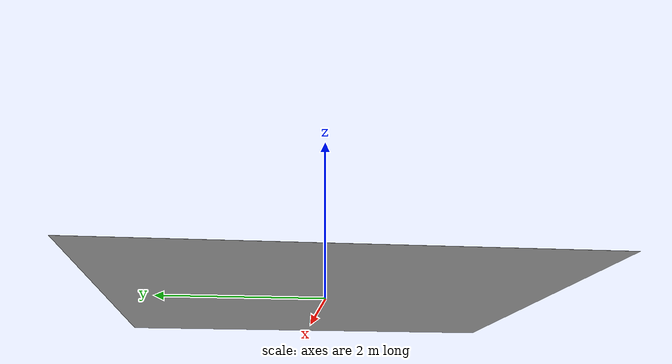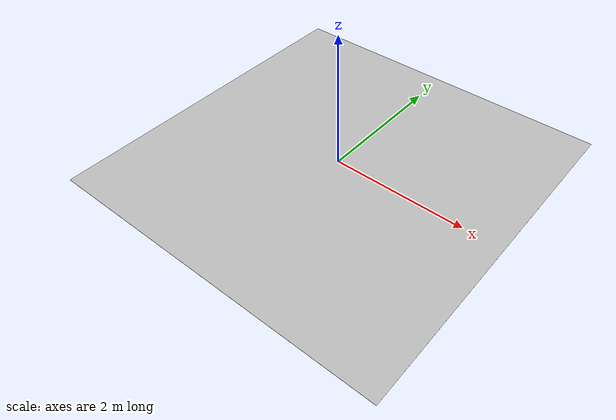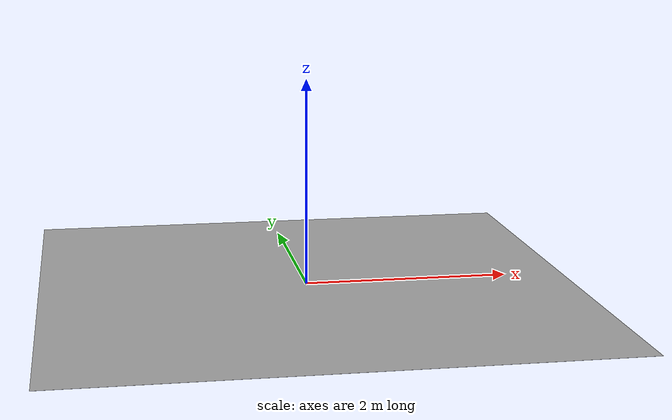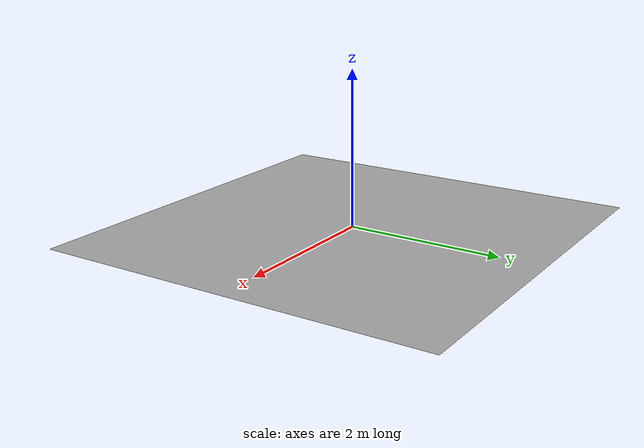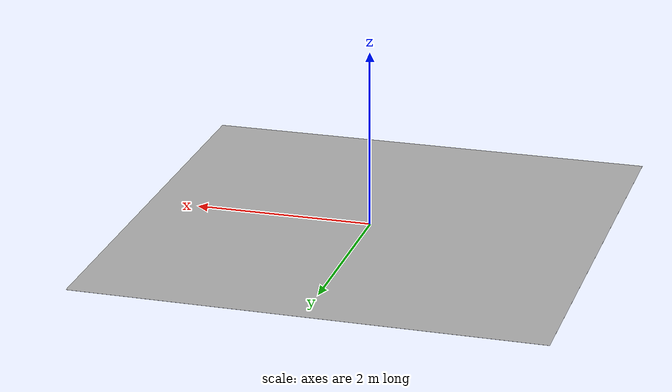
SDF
<?xml version="1.0" ?>
<sdf version="1.4">
  <model name="marker_1">
    <static>0</static>
    <link name="marker">
      <inertial>
        <mass>0.1</mass>
        <inertia>
          <ixx>0.000000</ixx>
          <ixy>0.000000</ixy>
          <ixz>0.000000</ixz>
          <iyy>0.000000</iyy>
          <iyz>0.000000</iyz>
          <izz>0.000000</izz>
        </inertia>
      </inertial>
      <visual name="visual">
        <geometry>
          <box>
            <size>5.15 5.15 0.001</size>
            <!-- SIZE OF THE MARKER + MARGIN -->
          </box>
        </geometry>
        <material>
          <script>
	        <uri>model://materials/scripts</uri>
	        <uri>model://materials/textures</uri>
            <name>marker_1</name>
          </script>
        </material>
      </visual>
      <collision name="collision">
        <geometry>
          <box>
            <size>0.15 0.15 0.002</size>
            <!-- SIZE OF THE MARKER + MARGIN -->
          </box>
        </geometry>
        <surface>
          <bounce />
          <friction>
            <ode />
          </friction>
          <contact>
            <ode />
          </contact>
        </surface>
      </collision>
      <self_collide>1</self_collide>
      <kinematic>0</kinematic>
      <gravity>1</gravity>
    </link>
  </model>
</sdf>
